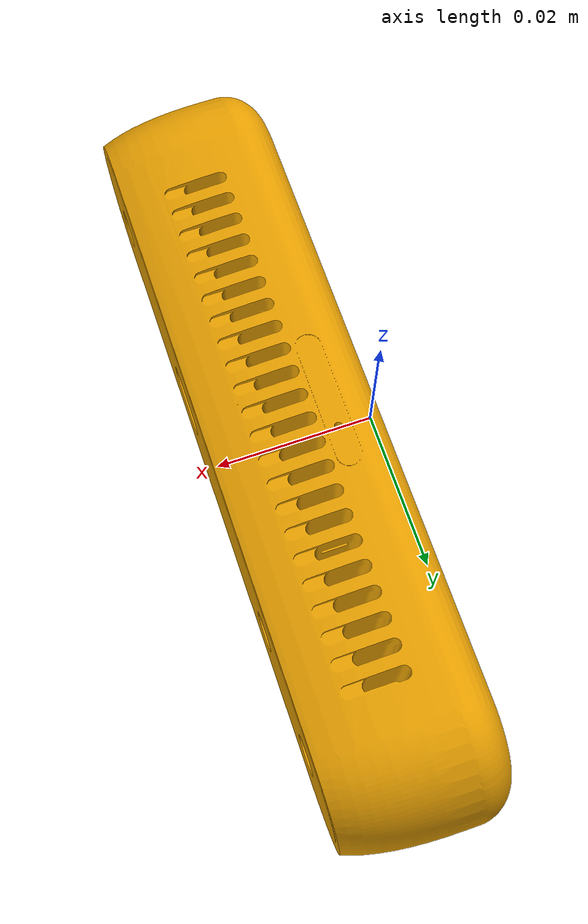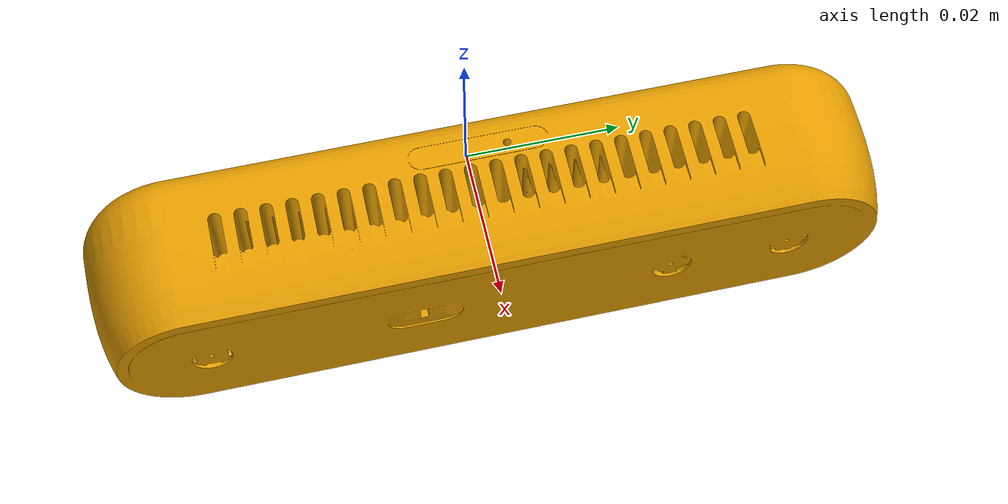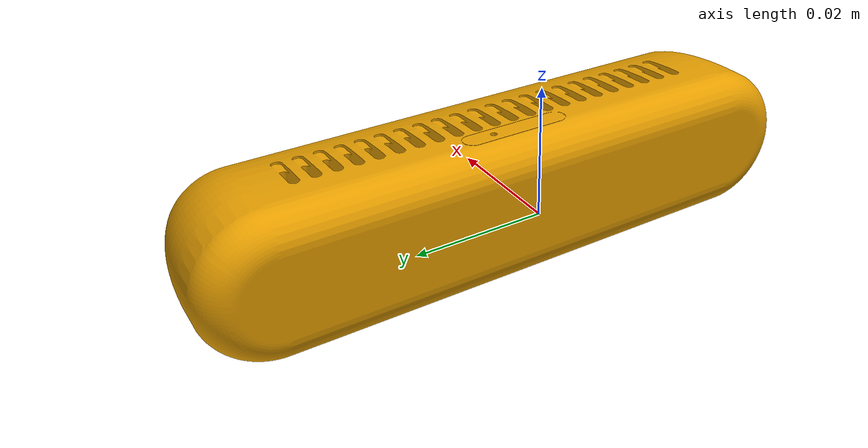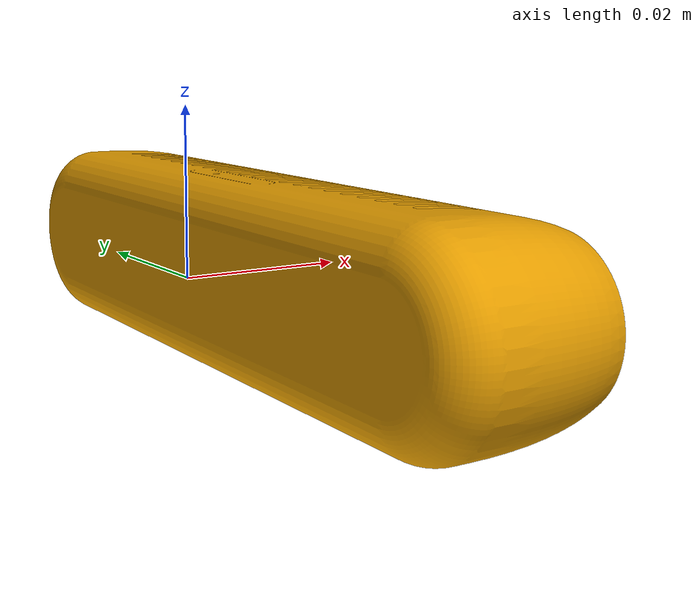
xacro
<?xml version="1.0" encoding="utf-8" ?>
<robot xmlns:xacro="http://www.ros.org/wiki/xacro">

  <link name="d415_link">
    <visual>
        <origin xyz="0 -0.0377 0" rpy="3.14159 0 1.5708" />
        <geometry>
            <mesh filename="file://$(find rover_description)/auto_mount/meshes/intel_d415.stl"/>
        </geometry>
    </visual>
  </link>

  <link name="d415_rgb_camera_frame"/>
  <joint name="d415_link_to_rgb" type="fixed">
    <origin xyz="0.02 0.036 0" rpy="0 0 0" />
    <parent link="d415_link"/>
    <child link="d415_rgb_camera_frame"/>
    <axis xyz="0 0 1"/>
  </joint>

</robot>
